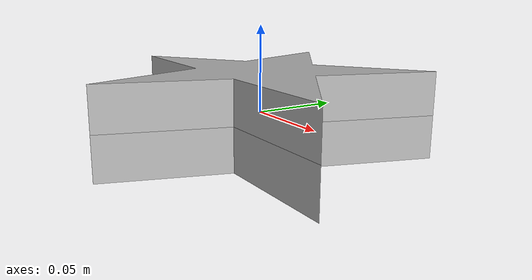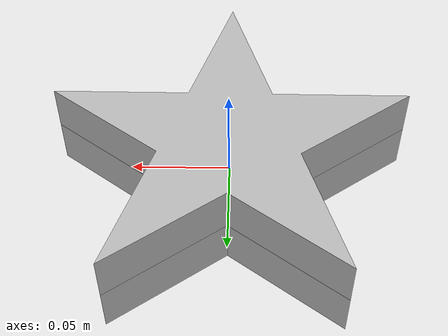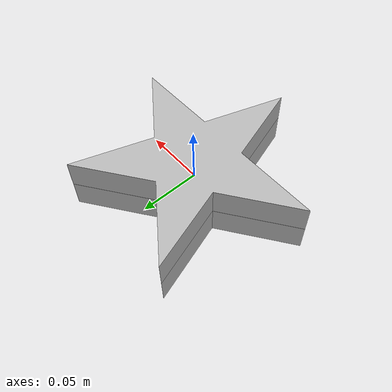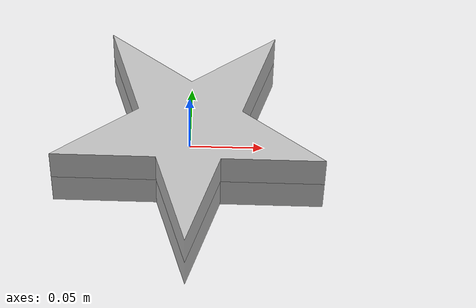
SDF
<sdf version='1.6'>
  <model name='star'>
    <link name='base_link'>
      <pose frame=''>0 0 0 0 -0 0</pose>
      <inertial>
        <pose frame=''>-0.000133 -8.7e-05 0 0 -0 0</pose>
        <mass>0.52982</mass>
        <inertia>
          <ixx>0.000718324</ixx>
          <ixy>-1.68138e-06</ixy>
          <ixz>-6.17275e-20</ixz>
          <iyy>0.000716264</iyy>
          <iyz>4.76456e-21</iyz>
          <izz>0.00121382</izz>
        </inertia>
      </inertial>
      <collision name='base_link_collision'>
        <pose frame=''>0 0 0 0 -0 0</pose>
        <geometry>
          <mesh>
            <scale>1 1 1</scale>
            <uri>model://star/meshes/base_link.STL</uri>
          </mesh>
        </geometry>
      </collision>
      <collision name='base_link_fixed_joint_lump__l2_collision_1'>
        <pose frame=''>-0.000133 -8.7e-05 0.025 0 -0 0</pose>
        <geometry>
          <mesh>
            <scale>1 1 1</scale>
            <uri>model://star/meshes/l2.STL</uri>
          </mesh>
        </geometry>
      </collision>
      <visual name='base_link_visual'>
        <pose frame=''>0 0 0 0 -0 0</pose>
        <geometry>
          <mesh>
            <scale>1 1 1</scale>
            <uri>model://star/meshes/base_link.STL</uri>
          </mesh>
        </geometry>
      </visual>
      <visual name='base_link_fixed_joint_lump__l2_visual_1'>
        <pose frame=''>-0.000133 -8.7e-05 0.025 0 -0 0</pose>
        <geometry>
          <mesh>
            <scale>1 1 1</scale>
            <uri>model://star/meshes/l2.STL</uri>
          </mesh>
        </geometry>
      </visual>
    </link>
  </model>
</sdf>
